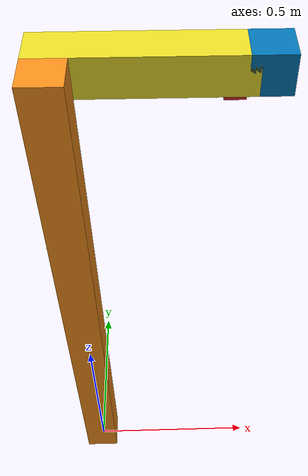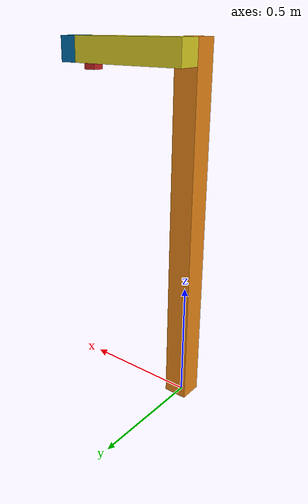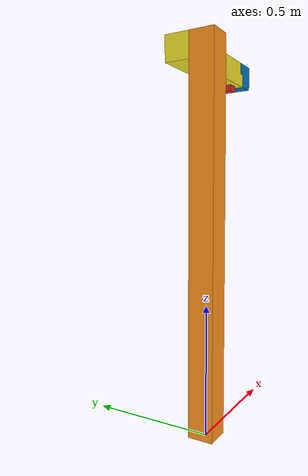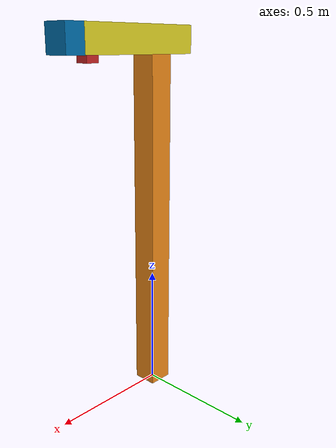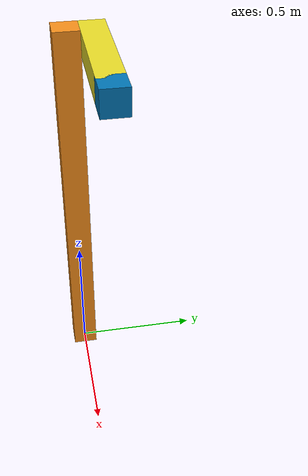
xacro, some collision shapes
<?xml version="1.0"?>
<!-- Revolute-Revolute Manipulator -->
<!--
Copied and modified from ROS1 example -
https://github.com/ros-simulation/gazebo_ros_demos/blob/kinetic-devel/rrbot_description/urdf/rrbot.xacro
-->
<robot xmlns:xacro="http://www.ros.org/wiki/xacro" name="2dof_robot">
  <xacro:arg name="prefix" default="" />

  <!-- Import RRBot macro -->
  <xacro:include filename="$(find segmentation)/urdf/camera.urdf.xacro" />

  <!-- Import Rviz colors -->
  <xacro:include filename="$(find segmentation)/gazebo/camera.materials.xacro" />

  <!-- Import RRBot ros2_control description -->
  <xacro:include filename="$(find segmentation)/ros2_control/camera.ros2_control.xacro" />

  <!-- Import Gazebo Plugin-->
  <xacro:include filename="$(find segmentation)/gazebo/camera.gazebo.xacro" />

  <!-- Used for fixing robot -->
  <link name="world"/>
  <gazebo reference="world">
    <static>true</static>
  </gazebo>

  <xacro:camera parent="world">
    <origin xyz="0 0 0" rpy="0 0 0" />
  </xacro:camera>

  <xacro:camera_gazebo />

  <xacro:camera_ros2_control
    name="CAMERA"/>

</robot>

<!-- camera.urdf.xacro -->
<robot xmlns:xacro="http://www.ros.org/wiki/xacro">

  <xacro:macro name="camera" params="parent *origin">

  <!-- Constants for robot dimensions -->
  <xacro:property name="mass" value="1" /> <!-- arbitrary value for mass -->
  <xacro:property name="width" value="0.1" /> <!-- Square dimensions (widthxwidth) of beams -->
  <xacro:property name="height1" value="1.5" /> <!-- Link 1 -->
  <xacro:property name="height2" value="0.5" /> <!-- Link 2 -->
  <xacro:property name="height3" value="0.5" /> <!-- Link 3 -->
  <xacro:property name="camera_link" value="0.05" /> <!-- Size of square 'camera' box -->
  <xacro:property name="axel_offset" value="0.05" /> <!-- Space btw top of beam and the each joint -->

  <joint name="base_joint" type="fixed">
    <xacro:insert_block name="origin" />
    <parent link="${parent}"/>
    <child link="base_link" />
  </joint>

  <!-- Base Link -->
  <link name="base_link">

    <visual>
      <origin xyz="0 0 ${height1/2}" rpy="0 0 0"/>
      <geometry>
        <box size="${width} ${width} ${height1}"/>
      </geometry>
      <material name="orange"/>
    </visual>

    <inertial>
      <origin xyz="0 0 ${height1/2}" rpy="0 0 0"/>
      <mass value="${mass}"/>
      <inertia
        ixx="${mass / 12.0 * (width*width + height1*height1)}" ixy="0.0" ixz="0.0"
        iyy="${mass / 12.0 * (height1*height1 + width*width)}" iyz="0.0"
        izz="${mass / 12.0 * (width*width + width*width)}"/>
      </inertial>
    </link>

    <joint name="joint1" type="continuous">
      <parent link="base_link"/>
      <child link="link1"/>
      <origin xyz="0 ${width} ${height1 - axel_offset}" rpy="0 1.5708 0"/>
      <axis xyz="1 0 0"/>
      <dynamics damping="0.7"/>
    </joint>

    <!-- Middle Link -->
    <link name="link1">
      <collision>
        <origin xyz="0 0 ${height2/2 - axel_offset}" rpy="0 0 0"/>
        <geometry>
          <box size="${width} ${width} ${height2}"/>
        </geometry>
      </collision>

      <visual>
        <origin xyz="0 0 ${height2/2 - axel_offset}" rpy="0 0 0"/>
        <geometry>
          <box size="${width} ${width} ${height2}"/>
        </geometry>
        <material name="yellow"/>
      </visual>

      <inertial>
        <origin xyz="0 0 ${height2/2 - axel_offset}" rpy="0 0 0"/>
        <mass value="${mass}"/>
        <inertia
          ixx="${mass / 12.0 * (width*width + height2*height2)}" ixy="0.0" ixz="0.0"
          iyy="${mass / 12.0 * (height2*height2 + width*width)}" iyz="0.0"
          izz="${mass / 12.0 * (width*width + width*width)}"/>
        </inertial>
      </link>

      <!-- Top Link -->

        <joint name="tool_joint" type="fixed">
          <origin xyz="0 0 1" rpy="0 0 0" />
          <parent link="link1"/>
          <child link="tool_link" />
        </joint>

        <!-- Tool Link -->
        <link name="tool_link">
        </link>

        <joint name="hokuyo_joint" type="fixed">
          <axis xyz="0 1 0" />
          <origin xyz="0 0 ${height3 - axel_offset/2}" rpy="0 0 0"/>
          <parent link="link1"/>
          <child link="hokuyo_link"/>
        </joint>

        <!-- Hokuyo Laser -->
        <link name="hokuyo_link">
          <collision>
            <origin xyz="0 0 0" rpy="0 0 0"/>
            <geometry>
              <box size="0.1 0.1 0.1"/>
            </geometry>
          </collision>

          <visual>
            <origin xyz="0 0 0" rpy="0 0 0"/>
            <geometry>
              <mesh filename="file://$(find segmentation)/meshes/hokuyo.dae"/>
            </geometry>
          </visual>

          <inertial>
            <mass value="1e-5" />
            <origin xyz="0 0 0" rpy="0 0 0"/>
            <inertia ixx="1e-6" ixy="0" ixz="0" iyy="1e-6" iyz="0" izz="1e-6" />
          </inertial>
        </link>

        <joint name="camera_joint" type="fixed">
          <axis xyz="0 1 0" />
          <origin xyz="${camera_link} 0 ${height3 - axel_offset*2}" rpy="0 0 0"/>
          <parent link="link1"/>
          <child link="camera_link"/>
        </joint>

        <!-- Camera -->
        <link name="camera_link">
          <collision>
            <origin xyz="0 0 0" rpy="0 0 0"/>
            <geometry>
              <box size="${camera_link} ${camera_link} ${camera_link}"/>
            </geometry>
          </collision>

          <visual>
            <origin xyz="0 0 0" rpy="0 0 0"/>
            <geometry>
              <box size="${camera_link} ${camera_link} ${camera_link}"/>
            </geometry>
            <material name="red"/>
          </visual>

          <inertial>
            <mass value="1e-5" />
            <origin xyz="0 0 0" rpy="0 0 0"/>
            <inertia ixx="1e-6" ixy="0" ixz="0" iyy="1e-6" iyz="0" izz="1e-6" />
          </inertial>
        </link>

        <!-- generate an optical frame http://www.ros.org/reps/rep-0103.html#suffix-frames
        so that ros and opencv can operate on the camera frame correctly -->
        <joint name="camera_optical_joint" type="fixed">
          <!-- these values have to be these values otherwise the gazebo camera image
          won't be aligned properly with the frame it is supposedly originating from -->
          <origin xyz="0 0 0" rpy="${-pi/2} 0 ${-pi/2}"/>
          <parent link="camera_link"/>
          <child link="camera_link_optical"/>
        </joint>

        <link name="camera_link_optical">
        </link>
  </xacro:macro>

</robot>
